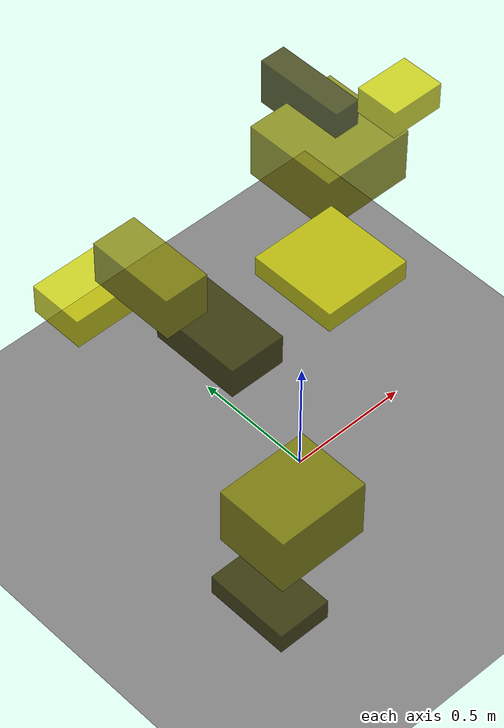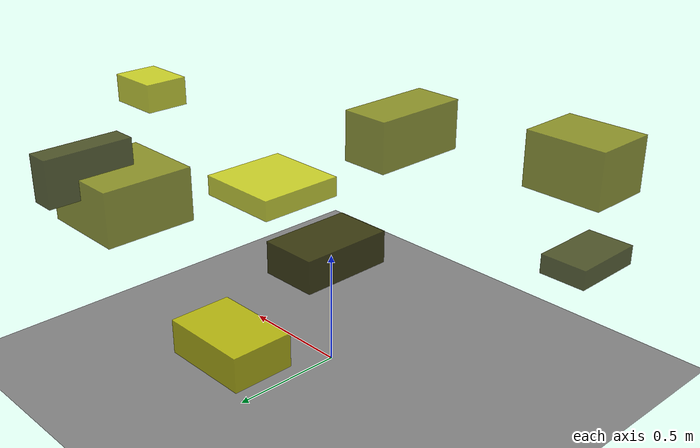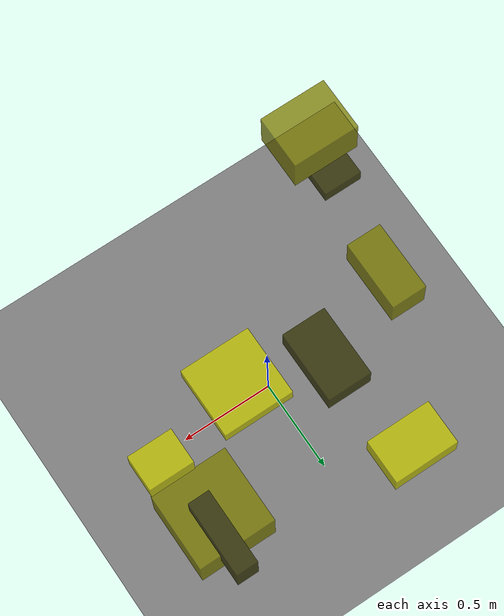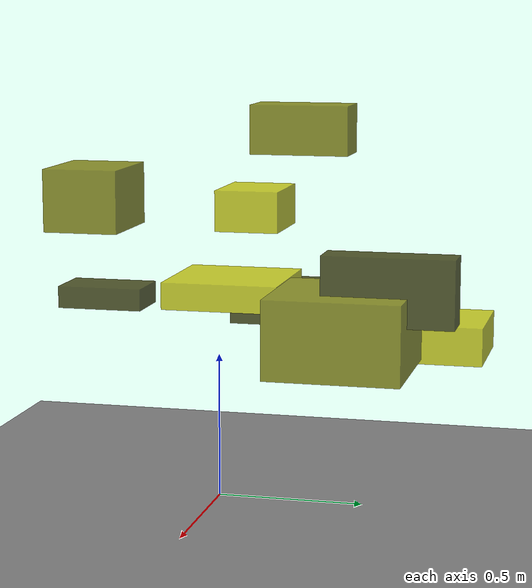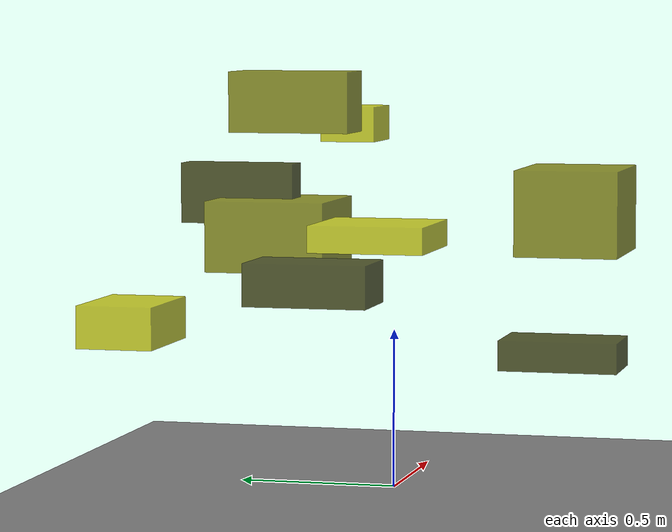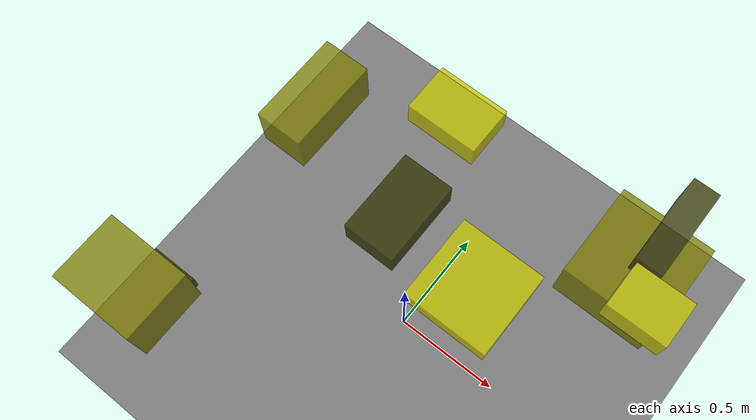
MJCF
<?xml version="1.0"?>
<mujoco model="obstacle_scene">
  <compiler angle="radian" coordinate="local"/>
  <option timestep="0.001" gravity="0 0 -9.81"/>

  <asset>
    <material name="obstacle_mat" rgba="0.8 0.8 0.0 0.8"/>
    <material name="ground_mat" rgba="0.5 0.5 0.5 1"/>
  </asset>

  <worldbody>
    <!-- Ground plane -->
    <geom name="ground" type="plane" size="3 3 0.1" material="ground_mat"/>

    <!-- Obstacles -->
    <body name="obstacle_0" pos="0.704999 0.705312 0.873772">
      <geom name="obs_0" type="box" size="0.056018 0.197571 0.102800" rgba="0.2 0.2 0.0 0.8"/>
    </body>
    <body name="obstacle_1" pos="0.667708 0.560042 0.739074">
      <geom name="obs_1" type="box" size="0.202191 0.204637 0.119658" rgba="0.5 0.5 0.0 0.8"/>
    </body>
    <body name="obstacle_2" pos="0.768853 0.316997 1.113856">
      <geom name="obs_2" type="box" size="0.115294 0.091994 0.058899" rgba="0.8 0.8 0.0 0.8"/>
    </body>
    <body name="obstacle_3" pos="-0.200705 0.211727 0.661975">
      <geom name="obs_3" type="box" size="0.119386 0.194583 0.066956" rgba="0.2 0.2 0.0 0.8"/>
    </body>
    <body name="obstacle_4" pos="-0.541711 0.174729 1.233924">
      <geom name="obs_4" type="box" size="0.088985 0.179601 0.089211" rgba="0.5 0.5 0.0 0.8"/>
    </body>
    <body name="obstacle_5" pos="-0.312762 0.764914 0.537412">
      <geom name="obs_5" type="box" size="0.175566 0.120557 0.066098" rgba="0.8 0.8 0.0 0.8"/>
    </body>
    <body name="obstacle_6" pos="-0.793585 -0.671160 0.543507">
      <geom name="obs_6" type="box" size="0.104638 0.166863 0.042549" rgba="0.2 0.2 0.0 0.8"/>
    </body>
    <body name="obstacle_7" pos="-0.717005 -0.691146 0.940868">
      <geom name="obs_7" type="box" size="0.179339 0.144686 0.120345" rgba="0.5 0.5 0.0 0.8"/>
    </body>
    <body name="obstacle_8" pos="0.238585 0.110453 0.774255">
      <geom name="obs_8" type="box" size="0.187229 0.188422 0.043501" rgba="0.8 0.8 0.0 0.8"/>
    </body>
  </worldbody>
</mujoco>
